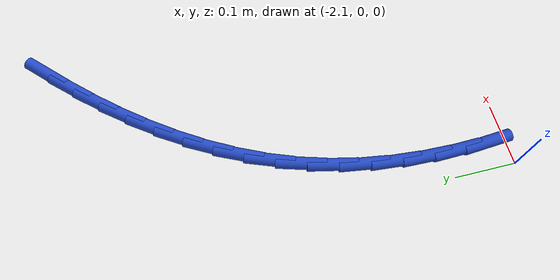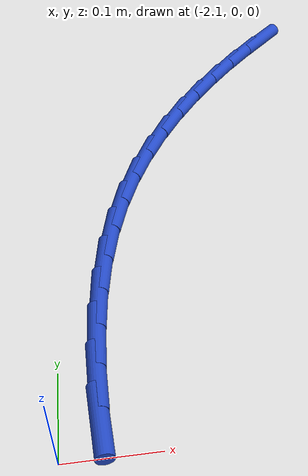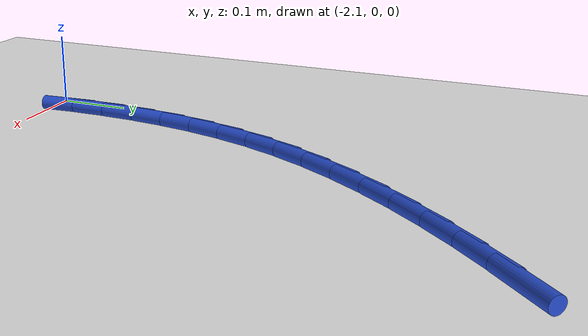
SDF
<sdf version="1.6">
 <world name="default">
  <model name="ground_plane">
   <static>1</static>
   <link name="link">
    <collision name="collision">
     <geometry><plane><normal>0 0 1</normal><size>100 100</size></plane></geometry>
     <surface><friction><ode><mu>100</mu><mu2>50</mu2></ode></friction></surface>
    </collision>
    <visual name="visual">
     <cast_shadows>0</cast_shadows>
     <geometry><plane><normal>0 0 1</normal><size>100 100</size></plane></geometry>
     <material>
      <script><uri>file://media/materials/scripts/gazebo.material</uri><name>Gazebo/WhiteGlow</name></script>
     </material>
    </visual>
   </link>
  </model>
  <model name="line">
   <link name="link_49">
    <pose>-1.7681449906177917 0.6921619362870859 0.01 0 1.57 0.7747782603524901</pose>
    <collision name="collision">
     <geometry><cylinder><radius>0.01</radius><length>0.08</length></cylinder></geometry>
    </collision>
    <visual name="visual">
     <material>
      <script><name>Gazebo/Blue</name><uri>file://media/materials/scripts/gazebo.material</uri></script>
     </material>
     <geometry><cylinder><radius>0.01</radius><length>0.08</length></cylinder></geometry>
    </visual>
   </link>
   <link name="link_50">
    <pose>-1.804073924629955 0.6569881348206883 0.01 0 1.57 0.8119400367414203</pose>
    <collision name="collision">
     <geometry><cylinder><radius>0.01</radius><length>0.08</length></cylinder></geometry>
    </collision>
    <visual name="visual">
     <material>
      <script><name>Gazebo/Blue</name><uri>file://media/materials/scripts/gazebo.material</uri></script>
     </material>
     <geometry><cylinder><radius>0.01</radius><length>0.08</length></cylinder></geometry>
    </visual>
   </link>
   <link name="link_51">
    <pose>-1.8387590066073085 0.6204111806278091 0.01 0 1.57 0.8530627150471326</pose>
    <collision name="collision">
     <geometry><cylinder><radius>0.01</radius><length>0.08</length></cylinder></geometry>
    </collision>
    <visual name="visual">
     <material>
      <script><name>Gazebo/Blue</name><uri>file://media/materials/scripts/gazebo.material</uri></script>
     </material>
     <geometry><cylinder><radius>0.01</radius><length>0.08</length></cylinder></geometry>
    </visual>
   </link>
   <link name="link_52">
    <pose>-1.8718968746971556 0.5824554402908316 0.01 0 1.57 0.8985572642878163</pose>
    <collision name="collision">
     <geometry><cylinder><radius>0.01</radius><length>0.08</length></cylinder></geometry>
    </collision>
    <visual name="visual">
     <material>
      <script><name>Gazebo/Blue</name><uri>file://media/materials/scripts/gazebo.material</uri></script>
     </material>
     <geometry><cylinder><radius>0.01</radius><length>0.08</length></cylinder></geometry>
    </visual>
   </link>
   <link name="link_53">
    <pose>-1.9031840290419306 0.5431452836387214 0.01 0 1.57 0.9488507455541496</pose>
    <collision name="collision">
     <geometry><cylinder><radius>0.01</radius><length>0.08</length></cylinder></geometry>
    </collision>
    <visual name="visual">
     <material>
      <script><name>Gazebo/Blue</name><uri>file://media/materials/scripts/gazebo.material</uri></script>
     </material>
     <geometry><cylinder><radius>0.01</radius><length>0.08</length></cylinder></geometry>
    </visual>
   </link>
   <link name="link_54">
    <pose>-1.9323169697840679 0.5025050805004437 0.01 0 1.57 1.0043659043930997</pose>
    <collision name="collision">
     <geometry><cylinder><radius>0.01</radius><length>0.08</length></cylinder></geometry>
    </collision>
    <visual name="visual">
     <material>
      <script><name>Gazebo/Blue</name><uri>file://media/materials/scripts/gazebo.material</uri></script>
     </material>
     <geometry><cylinder><radius>0.01</radius><length>0.08</length></cylinder></geometry>
    </visual>
   </link>
   <link name="link_55">
    <pose>-1.9589921970660014 0.46055920070496464 0.01 0 1.57 1.0654866153381135</pose>
    <collision name="collision">
     <geometry><cylinder><radius>0.01</radius><length>0.08</length></cylinder></geometry>
    </collision>
    <visual name="visual">
     <material>
      <script><name>Gazebo/Blue</name><uri>file://media/materials/scripts/gazebo.material</uri></script>
     </material>
     <geometry><cylinder><radius>0.01</radius><length>0.08</length></cylinder></geometry>
    </visual>
   </link>
   <link name="link_56">
    <pose>-1.9829062110301647 0.4173320140812503 0.01 0 1.57 1.1325082795366386</pose>
    <collision name="collision">
     <geometry><cylinder><radius>0.01</radius><length>0.08</length></cylinder></geometry>
    </collision>
    <visual name="visual">
     <material>
      <script><name>Gazebo/Blue</name><uri>file://media/materials/scripts/gazebo.material</uri></script>
     </material>
     <geometry><cylinder><radius>0.01</radius><length>0.08</length></cylinder></geometry>
    </visual>
   </link>
   <link name="link_57">
    <pose>-2.0037555118189934 0.37284789045826605 0.01 0 1.57 1.2055044351573232</pose>
    <collision name="collision">
     <geometry><cylinder><radius>0.01</radius><length>0.08</length></cylinder></geometry>
    </collision>
    <visual name="visual">
     <material>
      <script><name>Gazebo/Blue</name><uri>file://media/materials/scripts/gazebo.material</uri></script>
     </material>
     <geometry><cylinder><radius>0.01</radius><length>0.08</length></cylinder></geometry>
    </visual>
   </link>
   <link name="link_58">
    <pose>-2.021239825103815 0.32713208142383676 0.01 0 1.57 1.280584222997745</pose>
    <collision name="collision">
     <geometry><cylinder><radius>0.01</radius><length>0.08</length></cylinder></geometry>
    </collision>
    <visual name="visual">
     <material>
      <script><name>Gazebo/Blue</name><uri>file://media/materials/scripts/gazebo.material</uri></script>
     </material>
     <geometry><cylinder><radius>0.01</radius><length>0.08</length></cylinder></geometry>
    </visual>
   </link>
   <link name="link_59">
    <pose>-2.035238220095116 0.280258865488113 0.01 0 1.57 1.3517073523794747</pose>
    <collision name="collision">
     <geometry><cylinder><radius>0.01</radius><length>0.08</length></cylinder></geometry>
    </collision>
    <visual name="visual">
     <material>
      <script><name>Gazebo/Blue</name><uri>file://media/materials/scripts/gazebo.material</uri></script>
     </material>
     <geometry><cylinder><radius>0.01</radius><length>0.08</length></cylinder></geometry>
    </visual>
   </link>
   <link name="link_60">
    <pose>-2.045899883417467 0.2323763628259142 0.01 0 1.57 1.4181796261389406</pose>
    <collision name="collision">
     <geometry><cylinder><radius>0.01</radius><length>0.08</length></cylinder></geometry>
    </collision>
    <visual name="visual">
     <material>
      <script><name>Gazebo/Blue</name><uri>file://media/materials/scripts/gazebo.material</uri></script>
     </material>
     <geometry><cylinder><radius>0.01</radius><length>0.08</length></cylinder></geometry>
    </visual>
   </link>
   <link name="link_61">
    <pose>-2.0533963420614625 0.1836388007703915 0.01 0 1.57 1.4799682977395723</pose>
    <collision name="collision">
     <geometry><cylinder><radius>0.01</radius><length>0.08</length></cylinder></geometry>
    </collision>
    <visual name="visual">
     <material>
      <script><name>Gazebo/Blue</name><uri>file://media/materials/scripts/gazebo.material</uri></script>
     </material>
     <geometry><cylinder><radius>0.01</radius><length>0.08</length></cylinder></geometry>
    </visual>
   </link>
   <link name="link_62">
    <pose>-2.0578991230176915 0.1342004066546962 0.01 0 1.57 1.5371862954292241</pose>
    <collision name="collision">
     <geometry><cylinder><radius>0.01</radius><length>0.08</length></cylinder></geometry>
    </collision>
    <visual name="visual">
     <material>
      <script><name>Gazebo/Blue</name><uri>file://media/materials/scripts/gazebo.material</uri></script>
     </material>
     <geometry><cylinder><radius>0.01</radius><length>0.08</length></cylinder></geometry>
    </visual>
   </link>
   <link name="link_63">
    <pose>-2.059579753276749 0.08421540781198056 0.01 0 1.57 -1.5515441609289031</pose>
    <collision name="collision">
     <geometry><cylinder><radius>0.01</radius><length>0.08</length></cylinder></geometry>
    </collision>
    <visual name="visual">
     <material>
      <script><name>Gazebo/Blue</name><uri>file://media/materials/scripts/gazebo.material</uri></script>
     </material>
     <geometry><cylinder><radius>0.01</radius><length>0.08</length></cylinder></geometry>
    </visual>
   </link>
   <link name="link_64">
    <pose>-2.0586097598292254 0.03383803157539651 0.01 0 1.57 -1.5027585788790216</pose>
    <collision name="collision">
     <geometry><cylinder><radius>0.01</radius><length>0.08</length></cylinder></geometry>
    </collision>
    <visual name="visual">
     <material>
      <script><name>Gazebo/Blue</name><uri>file://media/materials/scripts/gazebo.material</uri></script>
     </material>
     <geometry><cylinder><radius>0.01</radius><length>0.08</length></cylinder></geometry>
    </visual>
   </link>
  </model>
 </world>
</sdf>
